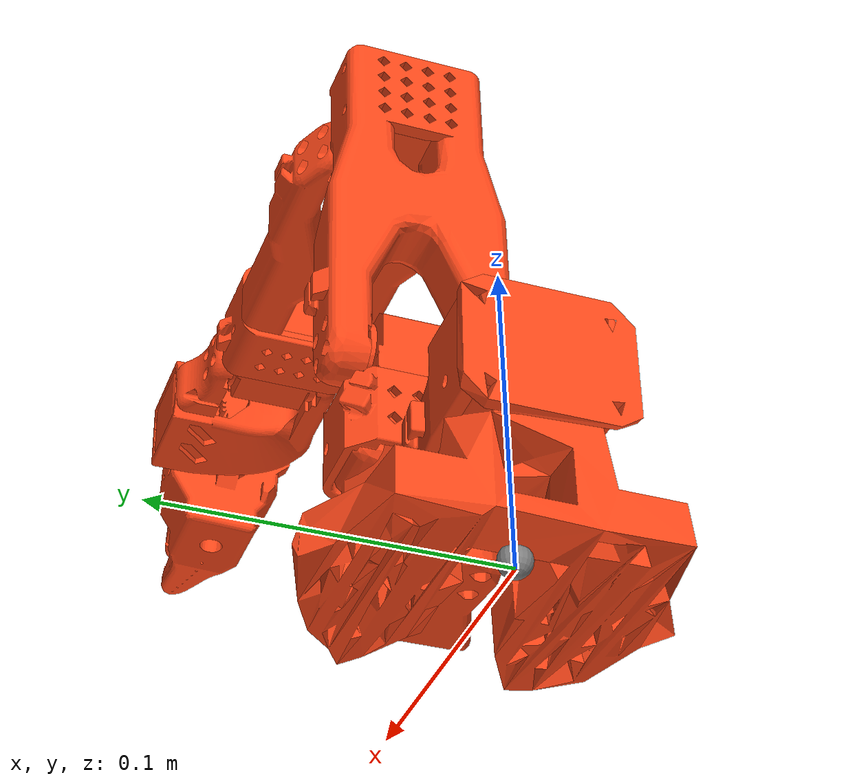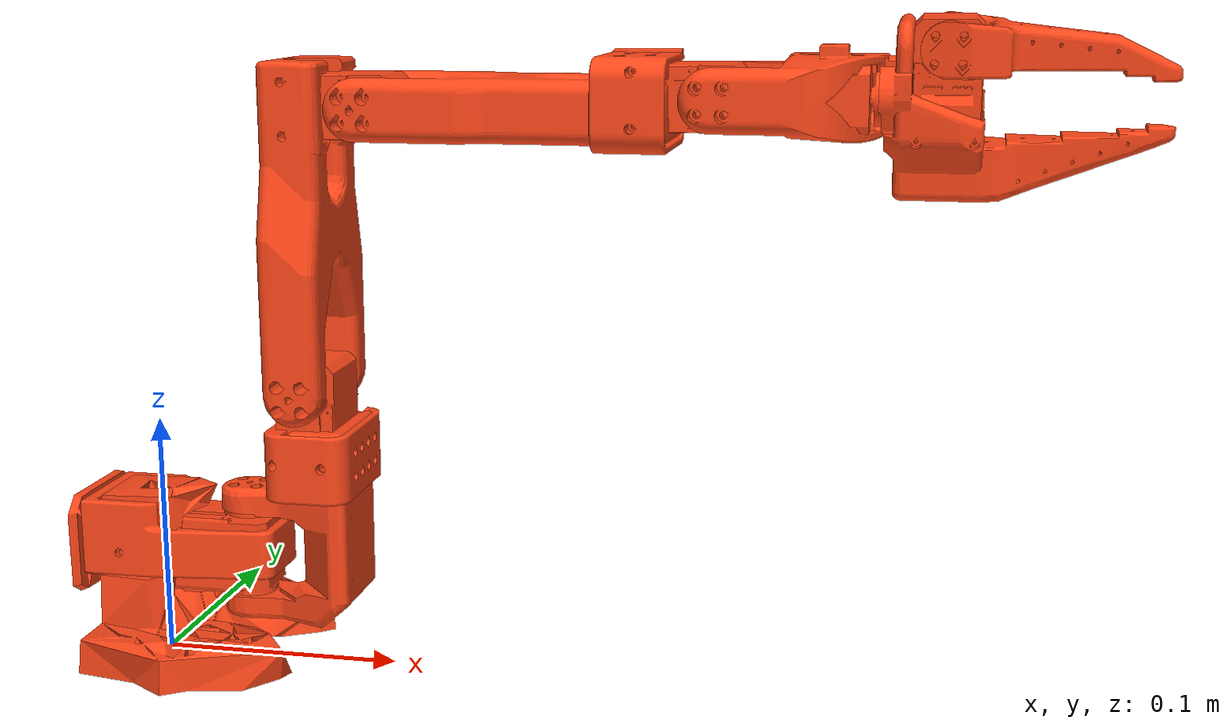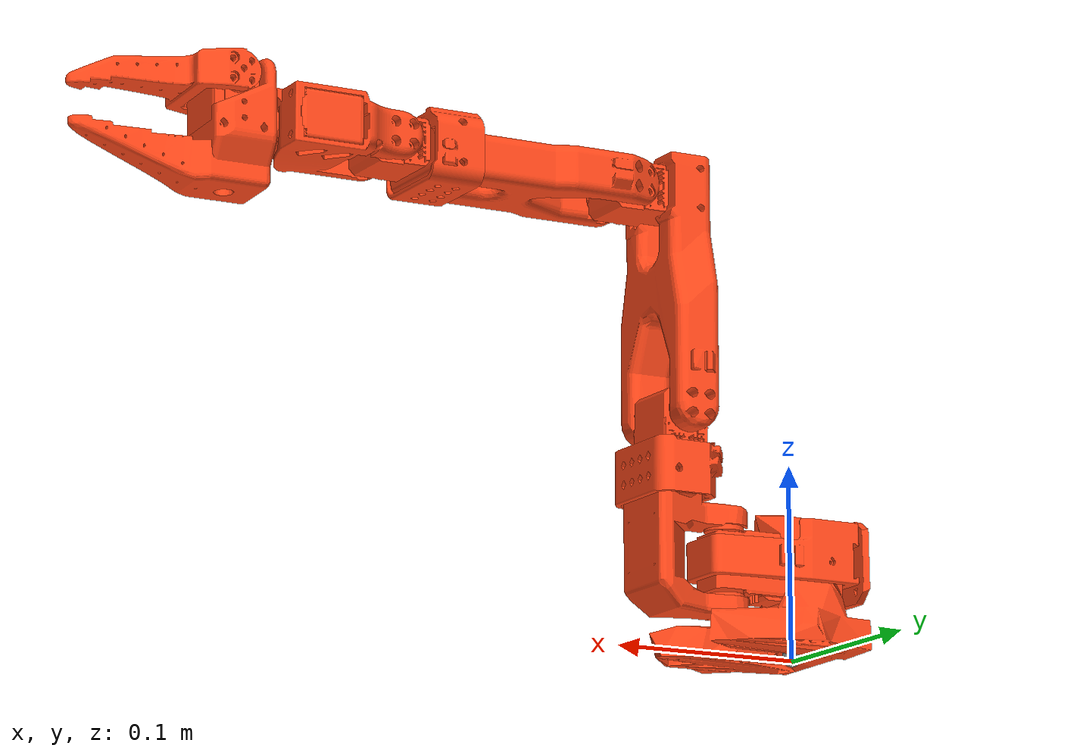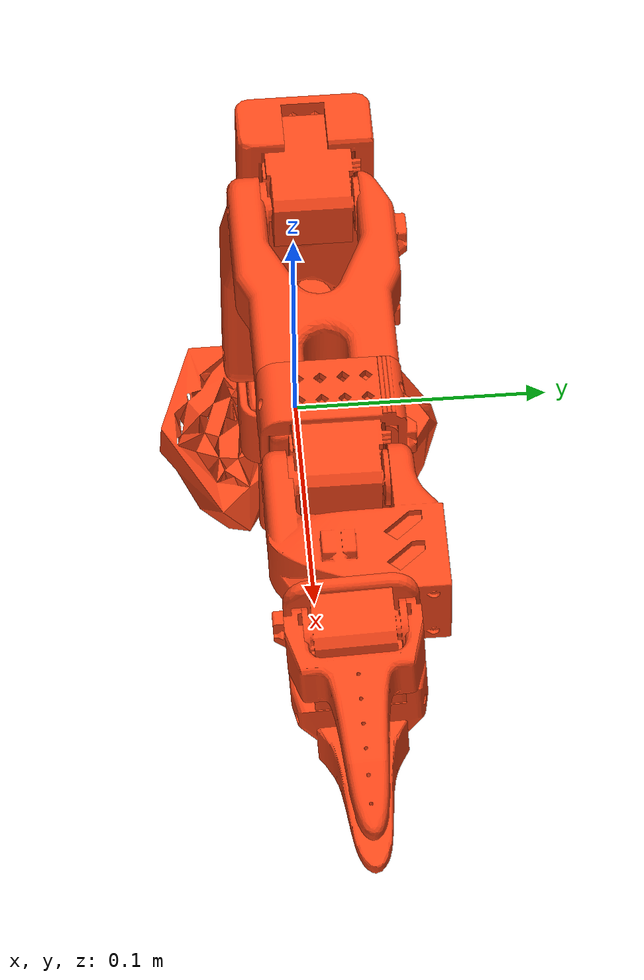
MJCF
<mujoco model="so101_new_calib">
  <default>
    <default class="robot">
      <default class="motor">
        <joint />
        <motor />
      </default>
      <default class="visual">
        <geom material="visualgeom" contype="0" conaffinity="0" group="2" />
      </default>
      <default class="collision">
        <geom material="collision_material" condim="3" contype="0" conaffinity="1" priority="1" group="1" solref="0.005 1" solimp="0.99 0.999 1e-05" friction="1 0.01 0.01" />
      </default>
    </default>
  </default>

  <compiler angle="radian" />

  <asset>
    <material name="3d_printed" rgba="1.0 0.82 0.12 1.0" />
    <material name="sts3215" rgba="0.1 0.1 0.1 1.0" />
    <material name="default_material" rgba="0.7 0.7 0.7 1" />
    <material name="collision_material" rgba="1.0 0.28 0.1 0.9" />
    <mesh name="base_motor_holder_so101_v1.stl" file="assets/base_motor_holder_so101_v1.stl" />
    <mesh name="base_so101_v2.stl" file="assets/base_so101_v2.stl" />
    <mesh name="sts3215_03a_v1.stl" file="assets/sts3215_03a_v1.stl" />
    <mesh name="waveshare_mounting_plate_so101_v2.stl" file="assets/waveshare_mounting_plate_so101_v2.stl" />
    <mesh name="motor_holder_so101_base_v1.stl" file="assets/motor_holder_so101_base_v1.stl" />
    <mesh name="rotation_pitch_so101_v1.stl" file="assets/rotation_pitch_so101_v1.stl" />
    <mesh name="upper_arm_so101_v1.stl" file="assets/upper_arm_so101_v1.stl" />
    <mesh name="under_arm_so101_v1.stl" file="assets/under_arm_so101_v1.stl" />
    <mesh name="motor_holder_so101_wrist_v1.stl" file="assets/motor_holder_so101_wrist_v1.stl" />
    <mesh name="sts3215_03a_no_horn_v1.stl" file="assets/sts3215_03a_no_horn_v1.stl" />
    <mesh name="wrist_roll_pitch_so101_v2.stl" file="assets/wrist_roll_pitch_so101_v2.stl" />
    <mesh name="wrist_roll_follower_so101_v1.stl" file="assets/wrist_roll_follower_so101_v1.stl" />
    <mesh name="moving_jaw_so101_v1.stl" file="assets/moving_jaw_so101_v1.stl" />
  </asset>

  <worldbody>
    <body name="base_link" pos="0.00000000 0.00000000 0.00240000" quat="1 0 0 0" childclass="robot">
      <freejoint name="floating_base" />
      <geom name="base_link_collision_0" pos="-0.00636471 -9.94414e-05 -0.0024" quat="0.49999816339744785 0.4999999999966273 0.5000018366025512 0.4999999999966273" type="mesh" mesh="base_motor_holder_so101_v1.stl" class="collision" />
      <geom name="base_link_collision_1" pos="-0.00636471 -8.97657e-09 -0.0024" quat="0.4999981633974483 0.49999999999662686 0.5000018366025516 0.49999999999662686" type="mesh" mesh="base_so101_v2.stl" class="collision" />
      <geom name="base_link_collision_2" pos="0.0263353 -8.97657e-09 0.0437" quat="1.0 -4.10574e-16 3.922564999999744e-18 6.245e-16" type="mesh" mesh="sts3215_03a_v1.stl" class="collision" />
      <geom name="base_link_collision_3" pos="-0.0309827 -0.000199441 0.0474" quat="0.4999981633974449 0.49999999999663025 0.5000018366025482 0.49999999999663025" type="mesh" mesh="waveshare_mounting_plate_so101_v2.stl" class="collision" />
      <geom name="base_link_visual_0" pos="-0.00636471 -9.94414e-05 -0.0024" quat="0.49999816339744785 0.4999999999966273 0.5000018366025512 0.4999999999966273" material="3d_printed" type="mesh" mesh="base_motor_holder_so101_v1.stl" class="visual" />
      <geom name="base_link_visual_1" pos="-0.00636471 -8.97657e-09 -0.0024" quat="0.4999981633974483 0.49999999999662686 0.5000018366025516 0.49999999999662686" material="3d_printed" type="mesh" mesh="base_so101_v2.stl" class="visual" />
      <geom name="base_link_visual_2" pos="0.0263353 -8.97657e-09 0.0437" quat="1.0 -4.10574e-16 3.922564999999744e-18 6.245e-16" material="sts3215" type="mesh" mesh="sts3215_03a_v1.stl" class="visual" />
      <geom name="base_link_visual_3" pos="-0.0309827 -0.000199441 0.0474" quat="0.4999981633974449 0.49999999999663025 0.5000018366025482 0.49999999999663025" material="3d_printed" type="mesh" mesh="waveshare_mounting_plate_so101_v2.stl" class="visual" />
      <body name="shoulder_link" pos="0.0388353 -8.97657e-09 0.0624" quat="1.760363785199545e-12 1.326794896676365e-06 -0.9999999999982396 -1.326794896676365e-06">
        <joint name="shoulder_pan" type="hinge" ref="0.0" class="motor" range="-1.91986 1.91986" axis="0 0 1" />
        <inertial pos="-0.0307604 -1.66727e-05 -0.0252713" quat="1.0 0.0 0.0 0.0" mass="0.100006" diaginertia="8.3759e-05 8.10403e-05 2.39783e-05" />
        <geom name="shoulder_link_collision_0" pos="-0.0303992 0.000422241 -0.0417" quat="0.4999981633974483 0.49999999999662686 0.49999999999662686 -0.5000018366025516" type="mesh" mesh="sts3215_03a_v1.stl" class="collision" />
        <geom name="shoulder_link_collision_1" pos="-0.0675992 -0.000177759 0.0158499" quat="0.4999981633974483 0.49999999999662686 -0.49999999999662686 0.5000018366025516" type="mesh" mesh="motor_holder_so101_base_v1.stl" class="collision" />
        <geom name="shoulder_link_collision_2" pos="0.0122008 2.22413e-05 0.0464" quat="0.7071054825112363 -0.7071080798594735 8.316302935088774e-34 8.31633348263126e-34" type="mesh" mesh="rotation_pitch_so101_v1.stl" class="collision" />
        <geom name="shoulder_link_visual_0" pos="-0.0303992 0.000422241 -0.0417" quat="0.4999981633974483 0.49999999999662686 0.49999999999662686 -0.5000018366025516" material="sts3215" type="mesh" mesh="sts3215_03a_v1.stl" class="visual" />
        <geom name="shoulder_link_visual_1" pos="-0.0675992 -0.000177759 0.0158499" quat="0.4999981633974483 0.49999999999662686 -0.49999999999662686 0.5000018366025516" material="3d_printed" type="mesh" mesh="motor_holder_so101_base_v1.stl" class="visual" />
        <geom name="shoulder_link_visual_2" pos="0.0122008 2.22413e-05 0.0464" quat="0.7071054825112363 -0.7071080798594735 8.316302935088774e-34 8.31633348263126e-34" material="3d_printed" type="mesh" mesh="rotation_pitch_so101_v1.stl" class="visual" />
        <body name="upper_arm_link" pos="-0.0303992 -0.0182778 -0.0542" quat="0.4999981633974483 -0.49999999999662686 -0.49999999999662686 -0.5000018366025516">
          <joint name="shoulder_lift" type="hinge" ref="0.0" class="motor" range="-1.74533 1.74533" axis="0 0 1" />
          <inertial pos="-0.0898471 -0.00838224 0.0184089" quat="1.0 0.0 0.0 0.0" mass="0.103" diaginertia="4.08002e-05 0.000147318 0.000142487" />
          <geom name="upper_arm_link_collision_0" pos="-0.11257 -0.0155 0.0187" quat="9.381839454221638e-07 -0.7071054825106139 0.7071080798588512 -9.38187391943447e-07" type="mesh" mesh="sts3215_03a_v1.stl" class="collision" />
          <geom name="upper_arm_link_collision_1" pos="-0.065085 0.012 0.0182" quat="1.3267948966775328e-06 0.9999999999991198 -6.545549999994239e-31 -8.684602335947626e-37" type="mesh" mesh="upper_arm_so101_v1.stl" class="collision" />
          <geom name="upper_arm_link_visual_0" pos="-0.11257 -0.0155 0.0187" quat="9.381839454221638e-07 -0.7071054825106139 0.7071080798588512 -9.38187391943447e-07" material="sts3215" type="mesh" mesh="sts3215_03a_v1.stl" class="visual" />
          <geom name="upper_arm_link_visual_1" pos="-0.065085 0.012 0.0182" quat="1.3267948966775328e-06 0.9999999999991198 -6.545549999994239e-31 -8.684602335947626e-37" material="3d_printed" type="mesh" mesh="upper_arm_so101_v1.stl" class="visual" />
          <body name="lower_arm_link" pos="-0.11257 -0.028 1.73763e-16" quat="0.7071054825112363 -4.3766725580708164e-16 1.8055643788175648e-16 0.7071080798594735">
            <joint name="elbow_flex" type="hinge" ref="0.0" class="motor" range="-1.69 1.69" axis="0 0 1" />
            <inertial pos="-0.0980701 0.00324376 0.0182831" quat="1.0 0.0 0.0 0.0" mass="0.104" diaginertia="2.87438e-05 0.000159844 0.00014529" />
            <geom name="lower_arm_link_collision_0" pos="-0.0648499 -0.032 0.0182" quat="1.3267948966775328e-06 0.9999999999991198 3.336009999997064e-31 4.426201043265217e-37" type="mesh" mesh="under_arm_so101_v1.stl" class="collision" />
            <geom name="lower_arm_link_collision_1" pos="-0.0648499 -0.032 0.018" quat="1.3267948966775328e-06 -0.9999999999991198 -1.6939920173905883e-21 -1.2767549999988762e-15" type="mesh" mesh="motor_holder_so101_wrist_v1.stl" class="collision" />
            <geom name="lower_arm_link_collision_2" pos="-0.1224 0.0052 0.0187" quat="1.760384697849545e-12 -1.326794896676365e-06 0.9999999999982396 -1.326794896676365e-06" type="mesh" mesh="sts3215_03a_v1.stl" class="collision" />
            <geom name="lower_arm_link_visual_0" pos="-0.0648499 -0.032 0.0182" quat="1.3267948966775328e-06 0.9999999999991198 3.336009999997064e-31 4.426201043265217e-37" material="3d_printed" type="mesh" mesh="under_arm_so101_v1.stl" class="visual" />
            <geom name="lower_arm_link_visual_1" pos="-0.0648499 -0.032 0.018" quat="1.3267948966775328e-06 -0.9999999999991198 -1.6939920173905883e-21 -1.2767549999988762e-15" material="3d_printed" type="mesh" mesh="motor_holder_so101_wrist_v1.stl" class="visual" />
            <geom name="lower_arm_link_visual_2" pos="-0.1224 0.0052 0.0187" quat="1.760384697849545e-12 -1.326794896676365e-06 0.9999999999982396 -1.326794896676365e-06" material="sts3215" type="mesh" mesh="sts3215_03a_v1.stl" class="visual" />
            <body name="wrist_link" pos="-0.1349 0.0052 3.62355e-17" quat="0.7071054825112363 1.7295535595292469e-15 -1.116241234178666e-15 -0.7071080798594735">
              <joint name="wrist_flex" type="hinge" ref="0.0" class="motor" range="-1.65806 1.65806" axis="0 0 1" />
              <inertial pos="-0.000103312 -0.0386143 0.0281156" quat="1.0 0.0 0.0 0.0" mass="0.079" diaginertia="3.68263e-05 2.5391e-05 2.1e-05" />
              <geom name="wrist_link_collision_0" pos="8.32667e-17 -0.0424 0.0306" quat="0.4999981633974483 0.49999999999662686 0.49999999999662686 -0.5000018366025516" type="mesh" mesh="sts3215_03a_no_horn_v1.stl" class="collision" />
              <geom name="wrist_link_collision_1" pos="0 -0.028 0.0181" quat="0.4999981633974483 -0.49999999999662686 -0.49999999999662686 -0.5000018366025516" type="mesh" mesh="wrist_roll_pitch_so101_v2.stl" class="collision" />
              <geom name="wrist_link_visual_0" pos="8.32667e-17 -0.0424 0.0306" quat="0.4999981633974483 0.49999999999662686 0.49999999999662686 -0.5000018366025516" material="sts3215" type="mesh" mesh="sts3215_03a_no_horn_v1.stl" class="visual" />
              <geom name="wrist_link_visual_1" pos="0 -0.028 0.0181" quat="0.4999981633974483 -0.49999999999662686 -0.49999999999662686 -0.5000018366025516" material="3d_printed" type="mesh" mesh="wrist_roll_pitch_so101_v2.stl" class="visual" />
              <body name="gripper_link" pos="5.55112e-17 -0.0611 0.0181" quat="0.01721007249293119 -0.017208133464804664 0.7068986593349474 0.7068960170901372">
                <joint name="wrist_roll" type="hinge" ref="0.0" class="motor" range="-2.74385 2.84121" axis="0 0 1" />
                <inertial pos="0.000213627 0.000245138 -0.025187" quat="1.0 0.0 0.0 0.0" mass="0.087" diaginertia="2.75087e-05 4.33657e-05 3.45059e-05" />
                <geom name="gripper_link_collision_0" pos="0.0077 0.0001 -0.0234" quat="0.7071054825112363 -0.7071080798594735 4.0522699066383794e-17 -7.723398194918994e-17" type="mesh" mesh="sts3215_03a_v1.stl" class="collision" />
                <geom name="gripper_link_collision_1" pos="8.32667e-17 -0.000218214 0.000949706" quat="1.3267948966775328e-06 -0.9999999999991198 -3.6825988434222926e-23 -2.775559999997557e-17" type="mesh" mesh="wrist_roll_follower_so101_v1.stl" class="collision" />
                <geom name="gripper_link_visual_0" pos="0.0077 0.0001 -0.0234" quat="0.7071054825112363 -0.7071080798594735 4.0522699066383794e-17 -7.723398194918994e-17" material="sts3215" type="mesh" mesh="sts3215_03a_v1.stl" class="visual" />
                <geom name="gripper_link_visual_1" pos="8.32667e-17 -0.000218214 0.000949706" quat="1.3267948966775328e-06 -0.9999999999991198 -3.6825988434222926e-23 -2.775559999997557e-17" material="3d_printed" type="mesh" mesh="wrist_roll_follower_so101_v1.stl" class="visual" />
                <body name="gripper_frame_link" pos="-0.0079 -0.000218121 -0.0981274" quat="1.3267948966775328e-06 0.0 0.9999999999991198 0.0">
                  <inertial pos="0 0 0" quat="1.0 0.0 0.0 0.0" mass="1e-9" diaginertia="0.0 0.0 0.0" />
                </body>
                <body name="moving_jaw_so101_v1_link" pos="0.0202 0.0188 -0.0234" quat="0.7071054825112361 0.7071080798594733 -1.8536205040112397e-08 1.8536272126587696e-08">
                  <joint name="gripper" type="hinge" ref="0.0" class="motor" range="-0.174533 1.74533" axis="0 0 1" />
                  <inertial pos="-0.00157495 -0.0300244 0.0192755" quat="1.0 0.0 0.0 0.0" mass="0.012" diaginertia="6.61427e-06 1.89032e-06 5.28738e-06" />
                  <geom name="moving_jaw_so101_v1_link_collision" pos="-5.55112e-17 -5.55112e-17 0.0189" quat="1.0 4.765725e-17 3.469445e-18 6.203849998346558e-25" type="mesh" mesh="moving_jaw_so101_v1.stl" class="collision" />
                  <geom name="moving_jaw_so101_v1_link_visual" pos="-5.55112e-17 -5.55112e-17 0.0189" quat="1.0 4.765725e-17 3.469445e-18 6.203849998346558e-25" material="3d_printed" type="mesh" mesh="moving_jaw_so101_v1.stl" class="visual" />
                </body>
              </body>
            </body>
          </body>
        </body>
      </body>
      <site name="base_link_site" pos="0 0 0" quat="1 0 0 0" />
      <camera name="front_camera" mode="track" fovy="90.0" quat="4.329780281177467e-17 4.329780281177466e-17 0.7071067811865475 0.7071067811865476" pos="0.0 2.0 0.5" />
      <camera name="side_camera" mode="track" fovy="90.0" quat="-0.5 -0.4999999999999999 0.5 0.5000000000000001" pos="-2.0 0.0 0.5" />
    </body>
  </worldbody>

  <actuator>
    <motor name="shoulder_pan_ctrl" joint="shoulder_pan" class="motor" />
    <motor name="shoulder_lift_ctrl" joint="shoulder_lift" class="motor" />
    <motor name="elbow_flex_ctrl" joint="elbow_flex" class="motor" />
    <motor name="wrist_flex_ctrl" joint="wrist_flex" class="motor" />
    <motor name="wrist_roll_ctrl" joint="wrist_roll" class="motor" />
    <motor name="gripper_ctrl" joint="gripper" class="motor" />
  </actuator>

  <contact>
    <exclude body1="gripper_link" body2="moving_jaw_so101_v1_link" />
    <exclude body1="wrist_link" body2="gripper_link" />
    <exclude body1="lower_arm_link" body2="wrist_link" />
    <exclude body1="upper_arm_link" body2="lower_arm_link" />
    <exclude body1="shoulder_link" body2="upper_arm_link" />
    <exclude body1="base_link" body2="shoulder_link" />
  </contact>

  <sensor>
    <framepos name="base_link_site_pos" objtype="site" objname="base_link_site" />
    <framequat name="base_link_site_quat" objtype="site" objname="base_link_site" />
    <framelinvel name="base_link_site_linvel" objtype="site" objname="base_link_site" />
    <frameangvel name="base_link_site_angvel" objtype="site" objname="base_link_site" />
    <velocimeter name="base_link_site_vel" site="base_link_site" />
  </sensor>
</mujoco>
